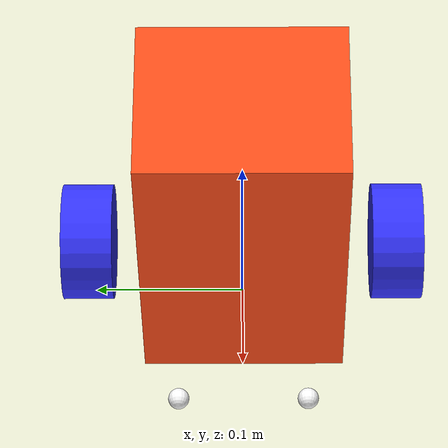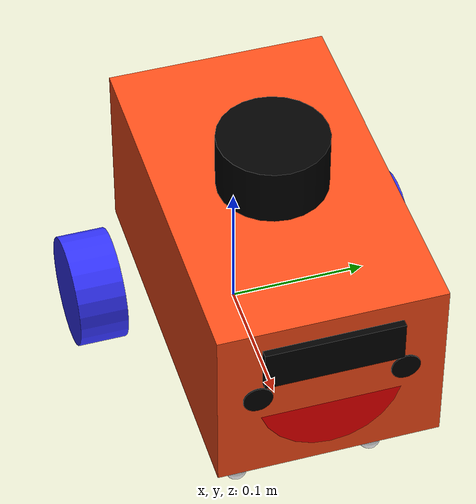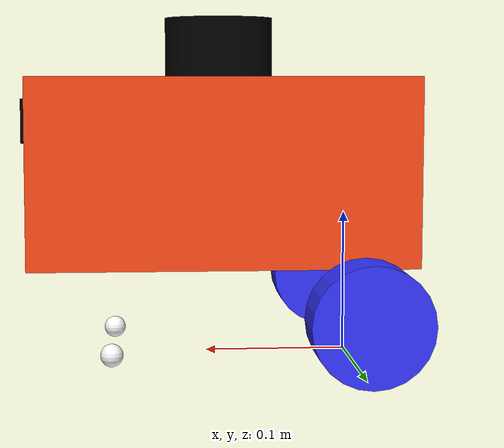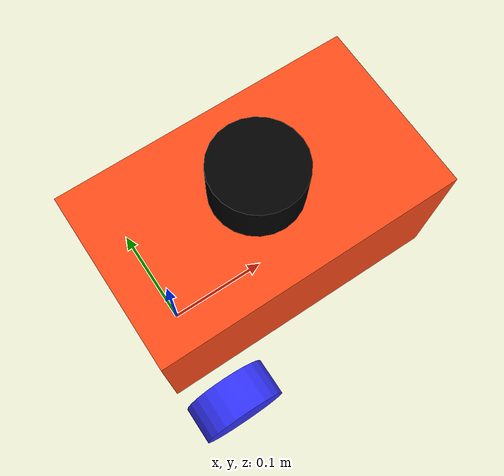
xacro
<?xml version="1.0"?>
<robot xmlns:xacro="http://www.ros.org/wiki/xacro"  name="robot">

   <xacro:arg name="use_ros2_control" default="true"/>
   <xacro:arg name="sim_mode" default="false"/>

   <xacro:include filename="robot_core.xacro" />

   <xacro:if value ="$(arg use_ros2_control)">
      <xacro:include filename="ros2_control.xacro"/>
   </xacro:if>
   <xacro:unless value ="$(arg use_ros2_control)">
      <xacro:include filename="gazebo_control.xacro"/>
   </xacro:unless>

   <xacro:include filename="lidar.xacro"/>
   <xacro:include filename="camera.xacro"/>

   <xacro:include filename="face.xacro"/>

</robot>

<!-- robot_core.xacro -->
<robot xmlns:xacro="http://www.ros.org/wiki/xacro" >

   <xacro:include filename="inertial_macros.xacro"/>

   <!-- unit meter -->
   <xacro:property name="chassis_length" value="0.262"/>
   <xacro:property name="chassis_width" value="0.154"/>
   <xacro:property name="chassis_height" value="0.128"/>
   <xacro:property name="chassis_offset_z" value="0.07"/>
   <xacro:property name="chassis_mass" value="1.0"/>
   <xacro:property name="wheel_radius" value="0.040"/>
   <xacro:property name="wheel_thickness" value="0.035"/>
   <xacro:property name="wheel_mass" value="0.05"/>

   <xacro:property name="wheel_offset_x" value="0.04"/>
   <xacro:property name="wheel_offset_y" value="0.107"/>
   <xacro:property name="wheel_offset_z" value="0.04"/>

   <xacro:property name="caster_wheel_radius" value="0.0079"/>
   <xacro:property name="caster_wheel_mass" value="0.01"/>

   <xacro:property name="caster_wheel_offset_x" value="0.207"/>
   <xacro:property name="caster_wheel_offset_y" value="0.0485"/>
   <xacro:property name="caster_wheel_offset_z" value="${chassis_offset_z - caster_wheel_radius}"/>

   <material name="white">
      <color rgba="1 1 1 1"/>
   </material>

   <material name="orange">
      <color rgba="1 0.3 0.1 1"/>
   </material>

   <material name="blue">
      <color rgba="0.2 0.2 1 1"/>
   </material>

   <material name="black">
      <color rgba="0 0 0 1"/>
   </material>

   <material name="red">
      <color rgba="1 0 0 1"/>
   </material>

   <!-- BASE LINK -->

   <link name="base_link">

   </link>

   <!-- BASE_FOOTPRINT LINK -->

   <joint name="base_footprint_joint" type="fixed">
      <parent link="base_link"/>
      <child link="base_footprint"/>
      <origin xyz="0 0 0" rpy="0 0 0"/>
   </joint>

   <link name="base_footprint">
   </link>

   <!-- CHASSIS LINK -->

   <joint name="chassis_joint" type="fixed">
      <parent link="base_link"/>
      <child link="chassis"/>
      <origin xyz="${-wheel_offset_x} 0 ${chassis_offset_z}"/>
   </joint>

   <link name="chassis">
      <visual>
         <origin xyz="${chassis_length/2} 0 ${chassis_height/2}"/>
         <geometry>
            <box size="${chassis_length} ${chassis_width} ${chassis_height}"/>
         </geometry>
         <material name="orange"/>
      </visual>

      <collision>
         <origin xyz="${chassis_length/2} 0 ${chassis_height/2}"/>
         <geometry>
            <box size="${chassis_length} ${chassis_width} ${chassis_height}"/>
         </geometry>

      </collision>
      <xacro:inertial_box mass="0.5" x="${chassis_length}" y="${chassis_width}" z="${chassis_height}">
         <origin xyz="${chassis_length/2} 0 ${chassis_height/2}" rpy="0 0 0"/>
      </xacro:inertial_box>
   </link>

   <gazebo reference="chassis">
      <material>Gazebo/Orange</material>
   </gazebo>

   <!--LEFT WHEEL LINK-->

   <joint name="left_wheel_joint" type="continuous">
      <parent link="base_link"/>
      <child link="left_wheel"/>
      <origin xyz="0 ${wheel_offset_y} ${wheel_offset_z}" rpy="-${pi/2} 0 0" />
      <axis xyz="0.0 0.0 1"/>
   </joint>

   <link name="left_wheel">
      <visual>
         <geometry>
            <cylinder radius="${wheel_radius}" length="${wheel_thickness}"/>
         </geometry>
         <material name="blue"/>
      </visual>

      <collision>
         <geometry>
            <sphere radius="${wheel_radius}"/>
         </geometry>

      </collision>

      <xacro:inertial_cylinder mass="${wheel_mass}" length="${wheel_thickness}" radius="${wheel_radius}">
         <origin xyz="0 0 0" rpy="0 0 0"/>
      </xacro:inertial_cylinder>

   </link>

   <gazebo reference="left_wheel">
      <material>Gazebo/Blue</material>
   </gazebo>

   <!--RIGHT WHEEL LINK-->

   <joint name="right_wheel_joint" type="continuous">
      <parent link="base_link"/>
      <child link="right_wheel"/>
      <origin xyz="0 ${-wheel_offset_y} ${wheel_offset_z}" rpy="${pi/2} 0 0" />
      <axis xyz="0.0 0.0 -1"/>
   </joint>

   <link name="right_wheel">
      <visual>
         <geometry>
            <cylinder radius="${wheel_radius}" length="${wheel_thickness}"/>
         </geometry>
         <material name="blue"/>
      </visual>

      <collision>
         <geometry>
            <sphere radius="${wheel_radius}"/>
         </geometry>

      </collision>

      <xacro:inertial_cylinder mass="${wheel_mass}" length="${wheel_thickness}" radius="${wheel_radius}">
         <origin xyz="0.0 0.0 0.0" rpy="0.0 0.0 0.0"/>
      </xacro:inertial_cylinder>

   </link>

   <gazebo reference="right_wheel">
      <material>Gazebo/Blue</material>
   </gazebo>

   <!-- RIGHT CASTER WHEEL LINK -->

   <joint name="right_caster_wheel_joint" type="fixed">
      <parent link="chassis"/>
      <child link="right_caster_wheel"/>
      <origin xyz="${caster_wheel_offset_x} ${-caster_wheel_offset_y} ${-caster_wheel_offset_z}"/>
   </joint>

   <link name="right_caster_wheel">
      <visual>
         <geometry>
            <sphere radius="${caster_wheel_radius}"/>
         </geometry>
         <material name="white"/>
      </visual>

      <collision>
         <geometry>
            <sphere radius="${caster_wheel_radius}"/>
         </geometry>

      </collision>

      <xacro:inertial_sphere mass="${caster_wheel_mass}" radius="${caster_wheel_radius}">
         <origin xyz="0.0 0.0 0.0" rpy="0.0 0.0 0.0"/>
      </xacro:inertial_sphere>

   </link>

   <gazebo reference="right_caster_wheel">
      <material>Gazebo/White</material>
      <mu1 value="0.001"/>
      <mu2 value="0.001"/>
   </gazebo>

   <!-- LEFT CASTER WHEEL LINK -->

   <joint name="left_caster_wheel_joint" type="fixed">
      <parent link="chassis"/>
      <child link="left_caster_wheel"/>
      <origin xyz="${caster_wheel_offset_x} ${caster_wheel_offset_y} ${-caster_wheel_offset_z}"/>
   </joint>

   <link name="left_caster_wheel">
      <visual>
         <geometry>
            <sphere radius="${caster_wheel_radius}"/>
         </geometry>
         <material name="white"/>
      </visual>

      <collision>
         <geometry>
            <sphere radius="${caster_wheel_radius}"/>
         </geometry>

      </collision>

      <xacro:inertial_sphere mass="${caster_wheel_mass}" radius="${caster_wheel_radius}">
         <origin xyz="0.0 0.0 0.0" rpy="0.0 0.0 0.0"/>
      </xacro:inertial_sphere>

   </link>

   <gazebo reference="left_caster_wheel">
      <material>Gazebo/White</material>
      <mu1 value="0.001"/>
      <mu2 value="0.001"/>
   </gazebo>

</robot>

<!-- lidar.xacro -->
<robot xmlns:xacro="http://www.ros.org/wiki/xacro" >

    <xacro:property name="lidar_length" value="0.041"/>
    <xacro:property name="lidar_radius" value="0.038"/>

    <joint name="laser_joint" type="fixed">
        <parent link="chassis"/>
        <child link="laser_frame"/>
        <origin xyz="${chassis_length/2} 0.0 ${chassis_height+lidar_length/2}" rpy="0.0 0.0 0.0"/>
    </joint>
    <link name="laser_frame">
        <visual>
            <geometry>
               <cylinder radius="${lidar_radius}" length="${lidar_length}"/>
            </geometry>
            <material name="black"/>
         </visual>
         <collision>
            <geometry>
               <cylinder radius="${lidar_radius}" length="${lidar_length}"/>
            </geometry>

         </collision>
         <xacro:inertial_cylinder mass="0.1" length="${lidar_length}" radius="${lidar_radius}">
            <origin xyz="0.0 0.0 0.0" rpy="0.0 0.0 0.0"/>
         </xacro:inertial_cylinder>

    </link>

    <gazebo reference="laser_frame">
        <material>Gazebo/Black</material>
        <sensor name="laser" type="ray">
            <pose> 0 0 0 0 0 0 </pose>
            <visualize>false</visualize>
            <update_rate>10</update_rate>
            <ray>
                <scan>
                    <horizontal>
                        <samples>360</samples>
                        <min_angle>-3.14</min_angle>
                        <max_angle>3.14</max_angle>
                    </horizontal>
                </scan>
                <range>
                    <min>0.3</min>
                    <max>12</max>
                </range>
            </ray>
            <plugin name="laser_controller" filename="libgazebo_ros_ray_sensor.so">
                <ros>
                    <argument>~/out:=scan</argument>
                </ros>
                <output_type>sensor_msgs/LaserScan</output_type>
                <frame_name>laser_frame</frame_name>
            </plugin>
        </sensor>
    </gazebo>

</robot>

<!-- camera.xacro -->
<robot xmlns:xacro="http://www.ros.org/wiki/xacro" >

    <joint name="camara_joint" type="fixed">
        <parent link="chassis"/>
        <child link="camera_link"/>
        <origin xyz="${chassis_length} 0.0 0.098" rpy="0.0 0.0 0.0"/>
    </joint>

    <link name="camera_link">
        <visual>
            <geometry>
                <box size="0.01 0.094 0.03"/>

            </geometry>
            <material name="black"/>
         </visual>

    </link>

    <joint name="camara_optical_joint" type="fixed">
        <parent link="camera_link"/>
        <child link="camera_link_optical"/>
        <origin xyz="0.0 0.0 0.0" rpy="${-pi/2} 0 ${-pi/2}"/>
    </joint>

    <link name="camera_link_optical"></link>

    <gazebo reference="camera_link">
       <material>Gazebo/Black</material>

       <sensor name="camera" type="camera">
            <pose> 0 0 0 0 0 0 </pose>
            <visualize>true</visualize>
            <update_rate>10</update_rate>
            <camera>
                <horizontal_fov>1.089</horizontal_fov>
                <image>
                    <format>R8G8B8</format>
                    <width>640</width>
                    <height>480</height>
                </image>
                <clip>
                    <near>0.05</near>
                    <far>8.0</far>
                </clip>
            </camera>
            <plugin name="camera_controller" filename="libgazebo_ros_camera.so">
                <frame_name>camera_link_optical</frame_name>
            </plugin>
        </sensor>
    </gazebo>

</robot>

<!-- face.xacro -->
<robot xmlns:xacro="http://www.ros.org/wiki/xacro">

   <joint name="face_joint" type="fixed">
      <parent link="chassis"/>
      <child link="face_link"/>
      <origin xyz="${chassis_length} 0 ${chassis_height/2}" rpy="0 0 0"/>
   </joint>

  <link name="face_link">
      <visual>
          <origin xyz="0 0.05 0.005" rpy="0 ${pi/2} 0"/>
          <geometry>
              <cylinder radius="0.01" length="0.002"/>
          </geometry>
          <material name="black"/>
      </visual>

      <visual>
          <origin xyz="0 -0.05 0.005" rpy="0 ${pi/2} 0"/>
          <geometry>
              <cylinder radius="0.01" length="0.002"/>
          </geometry>
          <material name="black"/>
      </visual>

      <visual>
          <origin xyz="-0.011 0 -0.00" rpy="0 ${1.5} 0"/>
          <geometry>
              <cylinder radius="0.05" length="0.02"/>
          </geometry>
          <material name="red"/>
      </visual>

  </link>

  <gazebo reference="face_link">
      <material>Gazebo/Black</material>
  </gazebo>

</robot>
